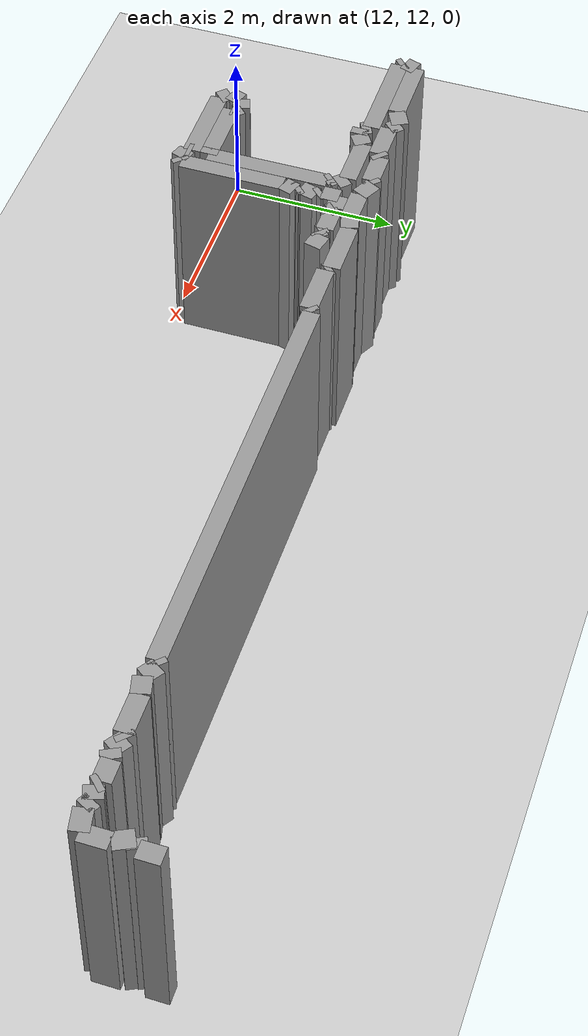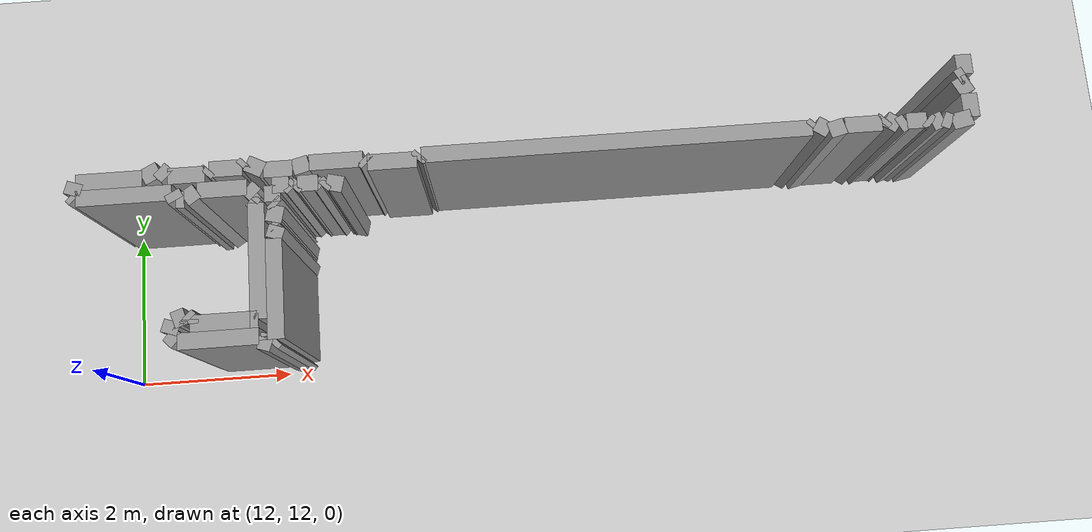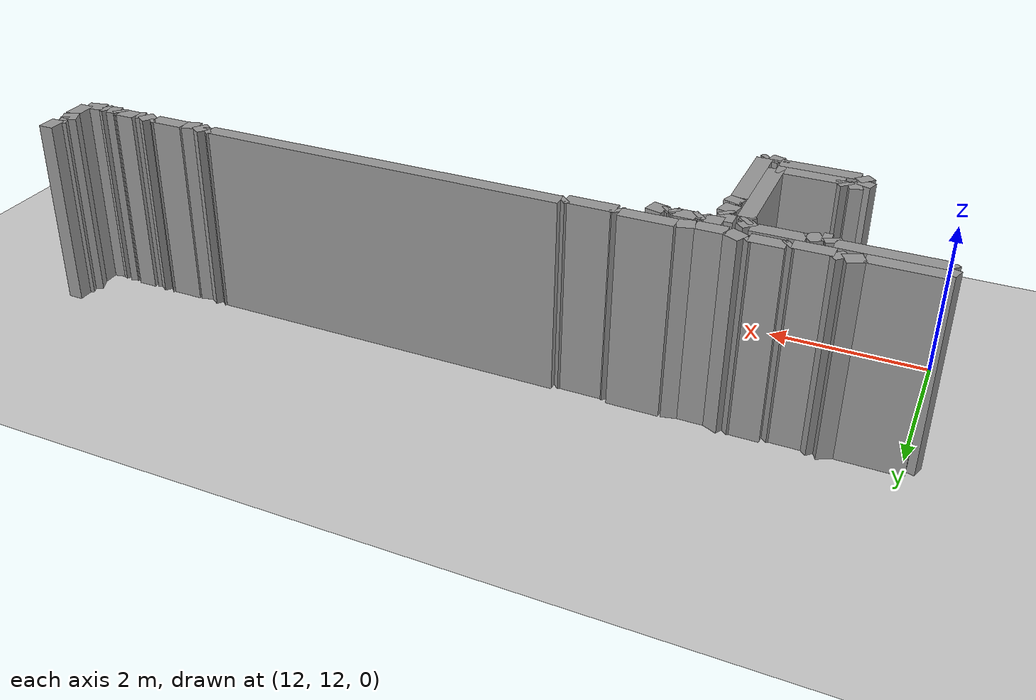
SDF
<sdf version="1.4">
 <world name="1_wall">
  <model name="ground_plane">
   <static>1</static>
   <link name="link">
    <collision name="collision">
     <geometry><plane><normal>0 0 1</normal><size>1000 1000</size></plane></geometry>
     <surface><friction><ode><mu>100</mu><mu2>50</mu2></ode></friction></surface>
    </collision>
    <visual name="visual">
     <cast_shadows>0</cast_shadows>
     <geometry><plane><normal>0 0 1</normal><size>10000 10000</size></plane></geometry>
     <material>
      <script><uri>file://media/materials/scripts/gazebo.material</uri><name>Gazebo/Grey</name></script>
     </material>
    </visual>
    <velocity_decay><linear>0</linear><angular>0</angular></velocity_decay>
   </link>
  </model>
  <model name="Wall_398">
   <static>1</static>
   <link name="Wall_398">
    <collision name="Wall_Collision_398">
     <geometry><box><size>0.25 0.2 2.5</size></box></geometry>
     <pose>0 0 1.25 0 -0 0</pose>
    </collision>
    <visual name="Wall_Visual_398">
     <pose>0 0 1.25 0 -0 0</pose>
     <geometry><box><size>0.25 0.2 2.5</size></box></geometry>
     <material>
      <script><uri>file://media/materials/scripts/gazebo.material</uri><name>Gazebo/Grey</name></script>
     </material>
    </visual>
    <velocity_decay><linear>0</linear><angular>0</angular></velocity_decay>
    <pose>22.8 14.925 0 0 0 -1.5707963267948966</pose>
   </link>
  </model>
  <model name="Wall_399">
   <static>1</static>
   <link name="Wall_399">
    <collision name="Wall_Collision_399">
     <geometry><box><size>0.1118033988749879 0.2 2.5</size></box></geometry>
     <pose>0 0 1.25 0 -0 0</pose>
    </collision>
    <visual name="Wall_Visual_399">
     <pose>0 0 1.25 0 -0 0</pose>
     <geometry><box><size>0.1118033988749879 0.2 2.5</size></box></geometry>
     <material>
      <script><uri>file://media/materials/scripts/gazebo.material</uri><name>Gazebo/Grey</name></script>
     </material>
    </visual>
    <velocity_decay><linear>0</linear><angular>0</angular></velocity_decay>
    <pose>22.75 14.775 0 0 0 -2.6779450445889728</pose>
   </link>
  </model>
  <model name="Wall_400">
   <static>1</static>
   <link name="Wall_400">
    <collision name="Wall_Collision_400">
     <geometry><box><size>0.22360679774997738 0.2 2.5</size></box></geometry>
     <pose>0 0 1.25 0 -0 0</pose>
    </collision>
    <visual name="Wall_Visual_400">
     <pose>0 0 1.25 0 -0 0</pose>
     <geometry><box><size>0.22360679774997738 0.2 2.5</size></box></geometry>
     <material>
      <script><uri>file://media/materials/scripts/gazebo.material</uri><name>Gazebo/Grey</name></script>
     </material>
    </visual>
    <velocity_decay><linear>0</linear><angular>0</angular></velocity_decay>
    <pose>22.75 14.65 0 0 0 -1.1071487177940975</pose>
   </link>
  </model>
  <model name="Wall_401">
   <static>1</static>
   <link name="Wall_401">
    <collision name="Wall_Collision_401">
     <geometry><box><size>0.3000000000000007 0.2 2.5</size></box></geometry>
     <pose>0 0 1.25 0 -0 0</pose>
    </collision>
    <visual name="Wall_Visual_401">
     <pose>0 0 1.25 0 -0 0</pose>
     <geometry><box><size>0.3000000000000007 0.2 2.5</size></box></geometry>
     <material>
      <script><uri>file://media/materials/scripts/gazebo.material</uri><name>Gazebo/Grey</name></script>
     </material>
    </visual>
    <velocity_decay><linear>0</linear><angular>0</angular></velocity_decay>
    <pose>22.8 14.4 0 0 0 -1.5707963267948966</pose>
   </link>
  </model>
  <model name="Wall_402">
   <static>1</static>
   <link name="Wall_402">
    <collision name="Wall_Collision_402">
     <geometry><box><size>0.25495097567963904 0.2 2.5</size></box></geometry>
     <pose>0 0 1.25 0 -0 0</pose>
    </collision>
    <visual name="Wall_Visual_402">
     <pose>0 0 1.25 0 -0 0</pose>
     <geometry><box><size>0.25495097567963904 0.2 2.5</size></box></geometry>
     <material>
      <script><uri>file://media/materials/scripts/gazebo.material</uri><name>Gazebo/Grey</name></script>
     </material>
    </visual>
    <velocity_decay><linear>0</linear><angular>0</angular></velocity_decay>
    <pose>22.675 14.225000000000001 0 0 0 -2.9441970937399167</pose>
   </link>
  </model>
  <model name="Wall_403">
   <static>1</static>
   <link name="Wall_403">
    <collision name="Wall_Collision_403">
     <geometry><box><size>0.1118033988749871 0.2 2.5</size></box></geometry>
     <pose>0 0 1.25 0 -0 0</pose>
    </collision>
    <visual name="Wall_Visual_403">
     <pose>0 0 1.25 0 -0 0</pose>
     <geometry><box><size>0.1118033988749871 0.2 2.5</size></box></geometry>
     <material>
      <script><uri>file://media/materials/scripts/gazebo.material</uri><name>Gazebo/Grey</name></script>
     </material>
    </visual>
    <velocity_decay><linear>0</linear><angular>0</angular></velocity_decay>
    <pose>22.5 14.225000000000001 0 0 0 2.677945044588987</pose>
   </link>
  </model>
  <model name="Wall_404">
   <static>1</static>
   <link name="Wall_404">
    <collision name="Wall_Collision_404">
     <geometry><box><size>0.15811388300842066 0.2 2.5</size></box></geometry>
     <pose>0 0 1.25 0 -0 0</pose>
    </collision>
    <visual name="Wall_Visual_404">
     <pose>0 0 1.25 0 -0 0</pose>
     <geometry><box><size>0.15811388300842066 0.2 2.5</size></box></geometry>
     <material>
      <script><uri>file://media/materials/scripts/gazebo.material</uri><name>Gazebo/Grey</name></script>
     </material>
    </visual>
    <velocity_decay><linear>0</linear><angular>0</angular></velocity_decay>
    <pose>22.375 14.225000000000001 0 0 0 -2.8198420991931616</pose>
   </link>
  </model>
  <model name="Wall_405">
   <static>1</static>
   <link name="Wall_405">
    <collision name="Wall_Collision_405">
     <geometry><box><size>0.0707106781186545 0.2 2.5</size></box></geometry>
     <pose>0 0 1.25 0 -0 0</pose>
    </collision>
    <visual name="Wall_Visual_405">
     <pose>0 0 1.25 0 -0 0</pose>
     <geometry><box><size>0.0707106781186545 0.2 2.5</size></box></geometry>
     <material>
      <script><uri>file://media/materials/scripts/gazebo.material</uri><name>Gazebo/Grey</name></script>
     </material>
    </visual>
    <velocity_decay><linear>0</linear><angular>0</angular></velocity_decay>
    <pose>22.275 14.225000000000001 0 0 0 2.3561944901923626</pose>
   </link>
  </model>
  <model name="Wall_406">
   <static>1</static>
   <link name="Wall_406">
    <collision name="Wall_Collision_406">
     <geometry><box><size>0.25 0.2 2.5</size></box></geometry>
     <pose>0 0 1.25 0 -0 0</pose>
    </collision>
    <visual name="Wall_Visual_406">
     <pose>0 0 1.25 0 -0 0</pose>
     <geometry><box><size>0.25 0.2 2.5</size></box></geometry>
     <material>
      <script><uri>file://media/materials/scripts/gazebo.material</uri><name>Gazebo/Grey</name></script>
     </material>
    </visual>
    <velocity_decay><linear>0</linear><angular>0</angular></velocity_decay>
    <pose>22.125 14.25 0 0 0 3.141592653589793</pose>
   </link>
  </model>
  <model name="Wall_407">
   <static>1</static>
   <link name="Wall_407">
    <collision name="Wall_Collision_407">
     <geometry><box><size>0.1118033988749871 0.2 2.5</size></box></geometry>
     <pose>0 0 1.25 0 -0 0</pose>
    </collision>
    <visual name="Wall_Visual_407">
     <pose>0 0 1.25 0 -0 0</pose>
     <geometry><box><size>0.1118033988749871 0.2 2.5</size></box></geometry>
     <material>
      <script><uri>file://media/materials/scripts/gazebo.material</uri><name>Gazebo/Grey</name></script>
     </material>
    </visual>
    <velocity_decay><linear>0</linear><angular>0</angular></velocity_decay>
    <pose>21.950000000000003 14.225000000000001 0 0 0 -2.677945044588987</pose>
   </link>
  </model>
  <model name="Wall_408">
   <static>1</static>
   <link name="Wall_408">
    <collision name="Wall_Collision_408">
     <geometry><box><size>0.18027756377320103 0.2 2.5</size></box></geometry>
     <pose>0 0 1.25 0 -0 0</pose>
    </collision>
    <visual name="Wall_Visual_408">
     <pose>0 0 1.25 0 -0 0</pose>
     <geometry><box><size>0.18027756377320103 0.2 2.5</size></box></geometry>
     <material>
      <script><uri>file://media/materials/scripts/gazebo.material</uri><name>Gazebo/Grey</name></script>
     </material>
    </visual>
    <velocity_decay><linear>0</linear><angular>0</angular></velocity_decay>
    <pose>21.825000000000003 14.25 0 0 0 2.5535900500422337</pose>
   </link>
  </model>
  <model name="Wall_409">
   <static>1</static>
   <link name="Wall_409">
    <collision name="Wall_Collision_409">
     <geometry><box><size>0.07071067811865325 0.2 2.5</size></box></geometry>
     <pose>0 0 1.25 0 -0 0</pose>
    </collision>
    <visual name="Wall_Visual_409">
     <pose>0 0 1.25 0 -0 0</pose>
     <geometry><box><size>0.07071067811865325 0.2 2.5</size></box></geometry>
     <material>
      <script><uri>file://media/materials/scripts/gazebo.material</uri><name>Gazebo/Grey</name></script>
     </material>
    </visual>
    <velocity_decay><linear>0</linear><angular>0</angular></velocity_decay>
    <pose>21.725 14.275 0 0 0 -2.3561944901923093</pose>
   </link>
  </model>
  <model name="Wall_410">
   <static>1</static>
   <link name="Wall_410">
    <collision name="Wall_Collision_410">
     <geometry><box><size>0.45000000000000284 0.2 2.5</size></box></geometry>
     <pose>0 0 1.25 0 -0 0</pose>
    </collision>
    <visual name="Wall_Visual_410">
     <pose>0 0 1.25 0 -0 0</pose>
     <geometry><box><size>0.45000000000000284 0.2 2.5</size></box></geometry>
     <material>
      <script><uri>file://media/materials/scripts/gazebo.material</uri><name>Gazebo/Grey</name></script>
     </material>
    </visual>
    <velocity_decay><linear>0</linear><angular>0</angular></velocity_decay>
    <pose>21.475 14.25 0 0 0 3.141592653589793</pose>
   </link>
  </model>
  <model name="Wall_411">
   <static>1</static>
   <link name="Wall_411">
    <collision name="Wall_Collision_411">
     <geometry><box><size>0.20615528128088206 0.2 2.5</size></box></geometry>
     <pose>0 0 1.25 0 -0 0</pose>
    </collision>
    <visual name="Wall_Visual_411">
     <pose>0 0 1.25 0 -0 0</pose>
     <geometry><box><size>0.20615528128088206 0.2 2.5</size></box></geometry>
     <material>
      <script><uri>file://media/materials/scripts/gazebo.material</uri><name>Gazebo/Grey</name></script>
     </material>
    </visual>
    <velocity_decay><linear>0</linear><angular>0</angular></velocity_decay>
    <pose>21.15 14.225000000000001 0 0 0 -2.8966139904629333</pose>
   </link>
  </model>
  <model name="Wall_412">
   <static>1</static>
   <link name="Wall_412">
    <collision name="Wall_Collision_412">
     <geometry><box><size>0.1802775637731981 0.2 2.5</size></box></geometry>
     <pose>0 0 1.25 0 -0 0</pose>
    </collision>
    <visual name="Wall_Visual_412">
     <pose>0 0 1.25 0 -0 0</pose>
     <geometry><box><size>0.1802775637731981 0.2 2.5</size></box></geometry>
     <material>
      <script><uri>file://media/materials/scripts/gazebo.material</uri><name>Gazebo/Grey</name></script>
     </material>
    </visual>
    <velocity_decay><linear>0</linear><angular>0</angular></velocity_decay>
    <pose>20.975 14.25 0 0 0 2.553590050042223</pose>
   </link>
  </model>
  <model name="Wall_413">
   <static>1</static>
   <link name="Wall_413">
    <collision name="Wall_Collision_413">
     <geometry><box><size>0.07071067811865576 0.2 2.5</size></box></geometry>
     <pose>0 0 1.25 0 -0 0</pose>
    </collision>
    <visual name="Wall_Visual_413">
     <pose>0 0 1.25 0 -0 0</pose>
     <geometry><box><size>0.07071067811865576 0.2 2.5</size></box></geometry>
     <material>
      <script><uri>file://media/materials/scripts/gazebo.material</uri><name>Gazebo/Grey</name></script>
     </material>
    </visual>
    <velocity_decay><linear>0</linear><angular>0</angular></velocity_decay>
    <pose>20.875 14.275 0 0 0 -2.356194490192345</pose>
   </link>
  </model>
  <model name="Wall_414">
   <static>1</static>
   <link name="Wall_414">
    <collision name="Wall_Collision_414">
     <geometry><box><size>4.75 0.2 2.5</size></box></geometry>
     <pose>0 0 1.25 0 -0 0</pose>
    </collision>
    <visual name="Wall_Visual_414">
     <pose>0 0 1.25 0 -0 0</pose>
     <geometry><box><size>4.75 0.2 2.5</size></box></geometry>
     <material>
      <script><uri>file://media/materials/scripts/gazebo.material</uri><name>Gazebo/Grey</name></script>
     </material>
    </visual>
    <velocity_decay><linear>0</linear><angular>0</angular></velocity_decay>
    <pose>18.475 14.25 0 0 0 3.141592653589793</pose>
   </link>
  </model>
  <model name="Wall_415">
   <static>1</static>
   <link name="Wall_415">
    <collision name="Wall_Collision_415">
     <geometry><box><size>0.0707106781186545 0.2 2.5</size></box></geometry>
     <pose>0 0 1.25 0 -0 0</pose>
    </collision>
    <visual name="Wall_Visual_415">
     <pose>0 0 1.25 0 -0 0</pose>
     <geometry><box><size>0.0707106781186545 0.2 2.5</size></box></geometry>
     <material>
      <script><uri>file://media/materials/scripts/gazebo.material</uri><name>Gazebo/Grey</name></script>
     </material>
    </visual>
    <velocity_decay><linear>0</linear><angular>0</angular></velocity_decay>
    <pose>16.075000000000003 14.225000000000001 0 0 0 -2.3561944901923626</pose>
   </link>
  </model>
  <model name="Wall_416">
   <static>1</static>
   <link name="Wall_416">
    <collision name="Wall_Collision_416">
     <geometry><box><size>0.5999999999999996 0.2 2.5</size></box></geometry>
     <pose>0 0 1.25 0 -0 0</pose>
    </collision>
    <visual name="Wall_Visual_416">
     <pose>0 0 1.25 0 -0 0</pose>
     <geometry><box><size>0.5999999999999996 0.2 2.5</size></box></geometry>
     <material>
      <script><uri>file://media/materials/scripts/gazebo.material</uri><name>Gazebo/Grey</name></script>
     </material>
    </visual>
    <velocity_decay><linear>0</linear><angular>0</angular></velocity_decay>
    <pose>15.75 14.200000000000001 0 0 0 3.141592653589793</pose>
   </link>
  </model>
  <model name="Wall_417">
   <static>1</static>
   <link name="Wall_417">
    <collision name="Wall_Collision_417">
     <geometry><box><size>0.0707106781186545 0.2 2.5</size></box></geometry>
     <pose>0 0 1.25 0 -0 0</pose>
    </collision>
    <visual name="Wall_Visual_417">
     <pose>0 0 1.25 0 -0 0</pose>
     <geometry><box><size>0.0707106781186545 0.2 2.5</size></box></geometry>
     <material>
      <script><uri>file://media/materials/scripts/gazebo.material</uri><name>Gazebo/Grey</name></script>
     </material>
    </visual>
    <velocity_decay><linear>0</linear><angular>0</angular></velocity_decay>
    <pose>15.425 14.225000000000001 0 0 0 2.3561944901923626</pose>
   </link>
  </model>
  <model name="Wall_418">
   <static>1</static>
   <link name="Wall_418">
    <collision name="Wall_Collision_418">
     <geometry><box><size>0.6500000000000004 0.2 2.5</size></box></geometry>
     <pose>0 0 1.25 0 -0 0</pose>
    </collision>
    <visual name="Wall_Visual_418">
     <pose>0 0 1.25 0 -0 0</pose>
     <geometry><box><size>0.6500000000000004 0.2 2.5</size></box></geometry>
     <material>
      <script><uri>file://media/materials/scripts/gazebo.material</uri><name>Gazebo/Grey</name></script>
     </material>
    </visual>
    <velocity_decay><linear>0</linear><angular>0</angular></velocity_decay>
    <pose>15.075 14.25 0 0 0 3.141592653589793</pose>
   </link>
  </model>
  <model name="Wall_419">
   <static>1</static>
   <link name="Wall_419">
    <collision name="Wall_Collision_419">
     <geometry><box><size>0.20615528128088206 0.2 2.5</size></box></geometry>
     <pose>0 0 1.25 0 -0 0</pose>
    </collision>
    <visual name="Wall_Visual_419">
     <pose>0 0 1.25 0 -0 0</pose>
     <geometry><box><size>0.20615528128088206 0.2 2.5</size></box></geometry>
     <material>
      <script><uri>file://media/materials/scripts/gazebo.material</uri><name>Gazebo/Grey</name></script>
     </material>
    </visual>
    <velocity_decay><linear>0</linear><angular>0</angular></velocity_decay>
    <pose>14.65 14.225000000000001 0 0 0 -2.8966139904629333</pose>
   </link>
  </model>
  <model name="Wall_420">
   <static>1</static>
   <link name="Wall_420">
    <collision name="Wall_Collision_420">
     <geometry><box><size>0.34999999999999964 0.2 2.5</size></box></geometry>
     <pose>0 0 1.25 0 -0 0</pose>
    </collision>
    <visual name="Wall_Visual_420">
     <pose>0 0 1.25 0 -0 0</pose>
     <geometry><box><size>0.34999999999999964 0.2 2.5</size></box></geometry>
     <material>
      <script><uri>file://media/materials/scripts/gazebo.material</uri><name>Gazebo/Grey</name></script>
     </material>
    </visual>
    <velocity_decay><linear>0</linear><angular>0</angular></velocity_decay>
    <pose>14.375 14.200000000000001 0 0 0 3.141592653589793</pose>
   </link>
  </model>
  <model name="Wall_421">
   <static>1</static>
   <link name="Wall_421">
    <collision name="Wall_Collision_421">
     <geometry><box><size>0.22360679774997974 0.2 2.5</size></box></geometry>
     <pose>0 0 1.25 0 -0 0</pose>
    </collision>
    <visual name="Wall_Visual_421">
     <pose>0 0 1.25 0 -0 0</pose>
     <geometry><box><size>0.22360679774997974 0.2 2.5</size></box></geometry>
     <material>
      <script><uri>file://media/materials/scripts/gazebo.material</uri><name>Gazebo/Grey</name></script>
     </material>
    </visual>
    <velocity_decay><linear>0</linear><angular>0</angular></velocity_decay>
    <pose>14.100000000000001 14.25 0 0 0 2.6779450445889905</pose>
   </link>
  </model>
  <model name="Wall_422">
   <static>1</static>
   <link name="Wall_422">
    <collision name="Wall_Collision_422">
     <geometry><box><size>0.0707106781186545 0.2 2.5</size></box></geometry>
     <pose>0 0 1.25 0 -0 0</pose>
    </collision>
    <visual name="Wall_Visual_422">
     <pose>0 0 1.25 0 -0 0</pose>
     <geometry><box><size>0.0707106781186545 0.2 2.5</size></box></geometry>
     <material>
      <script><uri>file://media/materials/scripts/gazebo.material</uri><name>Gazebo/Grey</name></script>
     </material>
    </visual>
    <velocity_decay><linear>0</linear><angular>0</angular></velocity_decay>
    <pose>13.975000000000001 14.275 0 0 0 -2.356194490192327</pose>
   </link>
  </model>
  <model name="Wall_423">
   <static>1</static>
   <link name="Wall_423">
    <collision name="Wall_Collision_423">
     <geometry><box><size>0.40000000000000036 0.2 2.5</size></box></geometry>
     <pose>0 0 1.25 0 -0 0</pose>
    </collision>
    <visual name="Wall_Visual_423">
     <pose>0 0 1.25 0 -0 0</pose>
     <geometry><box><size>0.40000000000000036 0.2 2.5</size></box></geometry>
     <material>
      <script><uri>file://media/materials/scripts/gazebo.material</uri><name>Gazebo/Grey</name></script>
     </material>
    </visual>
    <velocity_decay><linear>0</linear><angular>0</angular></velocity_decay>
    <pose>13.75 14.25 0 0 0 3.141592653589793</pose>
   </link>
  </model>
  <model name="Wall_424">
   <static>1</static>
   <link name="Wall_424">
    <collision name="Wall_Collision_424">
     <geometry><box><size>0.0707106781186545 0.2 2.5</size></box></geometry>
     <pose>0 0 1.25 0 -0 0</pose>
    </collision>
    <visual name="Wall_Visual_424">
     <pose>0 0 1.25 0 -0 0</pose>
     <geometry><box><size>0.0707106781186545 0.2 2.5</size></box></geometry>
     <material>
      <script><uri>file://media/materials/scripts/gazebo.material</uri><name>Gazebo/Grey</name></script>
     </material>
    </visual>
    <velocity_decay><linear>0</linear><angular>0</angular></velocity_decay>
    <pose>13.525 14.225000000000001 0 0 0 -2.3561944901923626</pose>
   </link>
  </model>
  <model name="Wall_425">
   <static>1</static>
   <link name="Wall_425">
    <collision name="Wall_Collision_425">
     <geometry><box><size>0.4499999999999993 0.2 2.5</size></box></geometry>
     <pose>0 0 1.25 0 -0 0</pose>
    </collision>
    <visual name="Wall_Visual_425">
     <pose>0 0 1.25 0 -0 0</pose>
     <geometry><box><size>0.4499999999999993 0.2 2.5</size></box></geometry>
     <material>
      <script><uri>file://media/materials/scripts/gazebo.material</uri><name>Gazebo/Grey</name></script>
     </material>
    </visual>
    <velocity_decay><linear>0</linear><angular>0</angular></velocity_decay>
    <pose>13.275 14.200000000000001 0 0 0 3.141592653589793</pose>
   </link>
  </model>
  <model name="Wall_426">
   <static>1</static>
   <link name="Wall_426">
    <collision name="Wall_Collision_426">
     <geometry><box><size>0.141421356237309 0.2 2.5</size></box></geometry>
     <pose>0 0 1.25 0 -0 0</pose>
    </collision>
    <visual name="Wall_Visual_426">
     <pose>0 0 1.25 0 -0 0</pose>
     <geometry><box><size>0.141421356237309 0.2 2.5</size></box></geometry>
     <material>
      <script><uri>file://media/materials/scripts/gazebo.material</uri><name>Gazebo/Grey</name></script>
     </material>
    </visual>
    <velocity_decay><linear>0</linear><angular>0</angular></velocity_decay>
    <pose>13.0 14.25 0 0 0 2.356194490192345</pose>
   </link>
  </model>
  <model name="Wall_427">
   <static>1</static>
   <link name="Wall_427">
    <collision name="Wall_Collision_427">
     <geometry><box><size>0.22360679774997974 0.2 2.5</size></box></geometry>
     <pose>0 0 1.25 0 -0 0</pose>
    </collision>
    <visual name="Wall_Visual_427">
     <pose>0 0 1.25 0 -0 0</pose>
     <geometry><box><size>0.22360679774997974 0.2 2.5</size></box></geometry>
     <material>
      <script><uri>file://media/materials/scripts/gazebo.material</uri><name>Gazebo/Grey</name></script>
     </material>
    </visual>
    <velocity_decay><linear>0</linear><angular>0</angular></velocity_decay>
    <pose>12.850000000000001 14.25 0 0 0 -2.6779450445889905</pose>
   </link>
  </model>
  <model name="Wall_428">
   <static>1</static>
   <link name="Wall_428">
    <collision name="Wall_Collision_428">
     <geometry><box><size>0.7999999999999989 0.2 2.5</size></box></geometry>
     <pose>0 0 1.25 0 -0 0</pose>
    </collision>
    <visual name="Wall_Visual_428">
     <pose>0 0 1.25 0 -0 0</pose>
     <geometry><box><size>0.7999999999999989 0.2 2.5</size></box></geometry>
     <material>
      <script><uri>file://media/materials/scripts/gazebo.material</uri><name>Gazebo/Grey</name></script>
     </material>
    </visual>
    <velocity_decay><linear>0</linear><angular>0</angular></velocity_decay>
    <pose>12.350000000000001 14.200000000000001 0 0 0 3.141592653589793</pose>
   </link>
  </model>
  <model name="Wall_429">
   <static>1</static>
   <link name="Wall_429">
    <collision name="Wall_Collision_429">
     <geometry><box><size>0.15811388300841953 0.2 2.5</size></box></geometry>
     <pose>0 0 1.25 0 -0 0</pose>
    </collision>
    <visual name="Wall_Visual_429">
     <pose>0 0 1.25 0 -0 0</pose>
     <geometry><box><size>0.15811388300841953 0.2 2.5</size></box></geometry>
     <material>
      <script><uri>file://media/materials/scripts/gazebo.material</uri><name>Gazebo/Grey</name></script>
     </material>
    </visual>
    <velocity_decay><linear>0</linear><angular>0</angular></velocity_decay>
    <pose>11.925 14.125 0 0 0 -1.8925468811915425</pose>
   </link>
  </model>
  <model name="Wall_430">
   <static>1</static>
   <link name="Wall_430">
    <collision name="Wall_Collision_430">
     <geometry><box><size>0.07071067811865576 0.2 2.5</size></box></geometry>
     <pose>0 0 1.25 0 -0 0</pose>
    </collision>
    <visual name="Wall_Visual_430">
     <pose>0 0 1.25 0 -0 0</pose>
     <geometry><box><size>0.07071067811865576 0.2 2.5</size></box></geometry>
     <material>
      <script><uri>file://media/materials/scripts/gazebo.material</uri><name>Gazebo/Grey</name></script>
     </material>
    </visual>
    <velocity_decay><linear>0</linear><angular>0</angular></velocity_decay>
    <pose>11.925 14.025 0 0 0 -0.7853981633974483</pose>
   </link>
  </model>
  <model name="Wall_431">
   <static>1</static>
   <link name="Wall_431">
    <collision name="Wall_Collision_431">
     <geometry><box><size>1.1500000000000004 0.2 2.5</size></box></geometry>
     <pose>0 0 1.25 0 -0 0</pose>
    </collision>
    <visual name="Wall_Visual_431">
     <pose>0 0 1.25 0 -0 0</pose>
     <geometry><box><size>1.1500000000000004 0.2 2.5</size></box></geometry>
     <material>
      <script><uri>file://media/materials/scripts/gazebo.material</uri><name>Gazebo/Grey</name></script>
     </material>
    </visual>
    <velocity_decay><linear>0</linear><angular>0</angular></velocity_decay>
    <pose>12.525000000000002 14.0 0 0 0 0.0</pose>
   </link>
  </model>
  <model name="Wall_432">
   <static>1</static>
   <link name="Wall_432">
    <collision name="Wall_Collision_432">
     <geometry><box><size>0.11180339887498869 0.2 2.5</size></box></geometry>
     <pose>0 0 1.25 0 -0 0</pose>
    </collision>
    <visual name="Wall_Visual_432">
     <pose>0 0 1.25 0 -0 0</pose>
     <geometry><box><size>0.11180339887498869 0.2 2.5</size></box></geometry>
     <material>
      <script><uri>file://media/materials/scripts/gazebo.material</uri><name>Gazebo/Grey</name></script>
     </material>
    </visual>
    <velocity_decay><linear>0</linear><angular>0</angular></velocity_decay>
    <pose>13.125 13.95 0 0 0 -1.1071487177940975</pose>
   </link>
  </model>
  <model name="Wall_433">
   <static>1</static>
   <link name="Wall_433">
    <collision name="Wall_Collision_433">
     <geometry><box><size>0.09999999999999964 0.2 2.5</size></box></geometry>
     <pose>0 0 1.25 0 -0 0</pose>
    </collision>
    <visual name="Wall_Visual_433">
     <pose>0 0 1.25 0 -0 0</pose>
     <geometry><box><size>0.09999999999999964 0.2 2.5</size></box></geometry>
     <material>
      <script><uri>file://media/materials/scripts/gazebo.material</uri><name>Gazebo/Grey</name></script>
     </material>
    </visual>
    <velocity_decay><linear>0</linear><angular>0</angular></velocity_decay>
    <pose>13.2 13.9 0 0 0 0.0</pose>
   </link>
  </model>
  <model name="Wall_434">
   <static>1</static>
   <link name="Wall_434">
    <collision name="Wall_Collision_434">
     <geometry><box><size>0.18027756377319956 0.2 2.5</size></box></geometry>
     <pose>0 0 1.25 0 -0 0</pose>
    </collision>
    <visual name="Wall_Visual_434">
     <pose>0 0 1.25 0 -0 0</pose>
     <geometry><box><size>0.18027756377319956 0.2 2.5</size></box></geometry>
     <material>
      <script><uri>file://media/materials/scripts/gazebo.material</uri><name>Gazebo/Grey</name></script>
     </material>
    </visual>
    <velocity_decay><linear>0</linear><angular>0</angular></velocity_decay>
    <pose>13.325 13.95 0 0 0 0.5880026035475648</pose>
   </link>
  </model>
  <model name="Wall_435">
   <static>1</static>
   <link name="Wall_435">
    <collision name="Wall_Collision_435">
     <geometry><box><size>0.5999999999999996 0.2 2.5</size></box></geometry>
     <pose>0 0 1.25 0 -0 0</pose>
    </collision>
    <visual name="Wall_Visual_435">
     <pose>0 0 1.25 0 -0 0</pose>
     <geometry><box><size>0.5999999999999996 0.2 2.5</size></box></geometry>
     <material>
      <script><uri>file://media/materials/scripts/gazebo.material</uri><name>Gazebo/Grey</name></script>
     </material>
    </visual>
    <velocity_decay><linear>0</linear><angular>0</angular></velocity_decay>
    <pose>13.7 14.0 0 0 0 0.0</pose>
   </link>
  </model>
  <model name="Wall_436">
   <static>1</static>
   <link name="Wall_436">
    <collision name="Wall_Collision_436">
     <geometry><box><size>0.14142135623731025 0.2 2.5</size></box></geometry>
     <pose>0 0 1.25 0 -0 0</pose>
    </collision>
    <visual name="Wall_Visual_436">
     <pose>0 0 1.25 0 -0 0</pose>
     <geometry><box><size>0.14142135623731025 0.2 2.5</size></box></geometry>
     <material>
      <script><uri>file://media/materials/scripts/gazebo.material</uri><name>Gazebo/Grey</name></script>
     </material>
    </visual>
    <velocity_decay><linear>0</linear><angular>0</angular></velocity_decay>
    <pose>14.05 13.95 0 0 0 -0.7853981633974394</pose>
   </link>
  </model>
  <model name="Wall_437">
   <static>1</static>
   <link name="Wall_437">
    <collision name="Wall_Collision_437">
     <geometry><box><size>0.0707106781186545 0.2 2.5</size></box></geometry>
     <pose>0 0 1.25 0 -0 0</pose>
    </collision>
    <visual name="Wall_Visual_437">
     <pose>0 0 1.25 0 -0 0</pose>
     <geometry><box><size>0.0707106781186545 0.2 2.5</size></box></geometry>
     <material>
      <script><uri>file://media/materials/scripts/gazebo.material</uri><name>Gazebo/Grey</name></script>
     </material>
    </visual>
    <velocity_decay><linear>0</linear><angular>0</angular></velocity_decay>
    <pose>14.075000000000001 13.875 0 0 0 -2.3561944901923626</pose>
   </link>
  </model>
  <model name="Wall_438">
   <static>1</static>
   <link name="Wall_438">
    <collision name="Wall_Collision_438">
     <geometry><box><size>0.07071067811865576 0.2 2.5</size></box></geometry>
     <pose>0 0 1.25 0 -0 0</pose>
    </collision>
    <visual name="Wall_Visual_438">
     <pose>0 0 1.25 0 -0 0</pose>
     <geometry><box><size>0.07071067811865576 0.2 2.5</size></box></geometry>
     <material>
      <script><uri>file://media/materials/scripts/gazebo.material</uri><name>Gazebo/Grey</name></script>
     </material>
    </visual>
    <velocity_decay><linear>0</linear><angular>0</angular></velocity_decay>
    <pose>14.075000000000001 13.825000000000001 0 0 0 -0.7853981633974483</pose>
   </link>
  </model>
  <model name="Wall_439">
   <static>1</static>
   <link name="Wall_439">
    <collision name="Wall_Collision_439">
     <geometry><box><size>1.4000000000000004 0.2 2.5</size></box></geometry>
     <pose>0 0 1.25 0 -0 0</pose>
    </collision>
    <visual name="Wall_Visual_439">
     <pose>0 0 1.25 0 -0 0</pose>
     <geometry><box><size>1.4000000000000004 0.2 2.5</size></box></geometry>
     <material>
      <script><uri>file://media/materials/scripts/gazebo.material</uri><name>Gazebo/Grey</name></script>
     </material>
    </visual>
    <velocity_decay><linear>0</linear><angular>0</angular></velocity_decay>
    <pose>14.100000000000001 13.100000000000001 0 0 0 -1.5707963267948966</pose>
   </link>
  </model>
  <model name="Wall_440">
   <static>1</static>
   <link name="Wall_440">
    <collision name="Wall_Collision_440">
     <geometry><box><size>0.10000000000000142 0.2 2.5</size></box></geometry>
     <pose>0 0 1.25 0 -0 0</pose>
    </collision>
    <visual name="Wall_Visual_440">
     <pose>0 0 1.25 0 -0 0</pose>
     <geometry><box><size>0.10000000000000142 0.2 2.5</size></box></geometry>
     <material>
      <script><uri>file://media/materials/scripts/gazebo.material</uri><name>Gazebo/Grey</name></script>
     </material>
    </visual>
    <velocity_decay><linear>0</linear><angular>0</angular></velocity_decay>
    <pose>14.05 12.4 0 0 0 3.141592653589793</pose>
   </link>
  </model>
  <model name="Wall_441">
   <static>1</static>
   <link name="Wall_441">
    <collision name="Wall_Collision_441">
     <geometry><box><size>0.6999999999999993 0.2 2.5</size></box></geometry>
     <pose>0 0 1.25 0 -0 0</pose>
    </collision>
    <visual name="Wall_Visual_441">
     <pose>0 0 1.25 0 -0 0</pose>
     <geometry><box><size>0.6999999999999993 0.2 2.5</size></box></geometry>
     <material>
      <script><uri>file://media/materials/scripts/gazebo.material</uri><name>Gazebo/Grey</name></script>
     </material>
    </visual>
    <velocity_decay><linear>0</linear><angular>0</angular></velocity_decay>
    <pose>13.65 12.4 0 0 0 3.141592653589793</pose>
   </link>
  </model>
  <model name="Wall_442">
   <static>1</static>
   <link name="Wall_442">
    <collision name="Wall_Collision_442">
     <geometry><box><size>0.05000000000000071 0.2 2.5</size></box></geometry>
     <pose>0 0 1.25 0 -0 0</pose>
    </collision>
    <visual name="Wall_Visual_442">
     <pose>0 0 1.25 0 -0 0</pose>
     <geometry><box><size>0.05000000000000071 0.2 2.5</size></box></geometry>
     <material>
      <script><uri>file://media/materials/scripts/gazebo.material</uri><name>Gazebo/Grey</name></script>
     </material>
    </visual>
    <velocity_decay><linear>0</linear><angular>0</angular></velocity_decay>
    <pose>13.3 12.425 0 0 0 1.5707963267948966</pose>
   </link>
  </model>
  <model name="Wall_443">
   <static>1</static>
   <link name="Wall_443">
    <collision name="Wall_Collision_443">
     <geometry><box><size>0.0707106781186545 0.2 2.5</size></box></geometry>
     <pose>0 0 1.25 0 -0 0</pose>
    </collision>
    <visual name="Wall_Visual_443">
     <pose>0 0 1.25 0 -0 0</pose>
     <geometry><box><size>0.0707106781186545 0.2 2.5</size></box></geometry>
     <material>
      <script><uri>file://media/materials/scripts/gazebo.material</uri><name>Gazebo/Grey</name></script>
     </material>
    </visual>
    <velocity_decay><linear>0</linear><angular>0</angular></velocity_decay>
    <pose>13.275 12.475000000000001 0 0 0 2.3561944901923626</pose>
   </link>
  </model>
  <model name="Wall_444">
   <static>1</static>
   <link name="Wall_444">
    <collision name="Wall_Collision_444">
     <geometry><box><size>0.15811388300841728 0.2 2.5</size></box></geometry>
     <pose>0 0 1.25 0 -0 0</pose>
    </collision>
    <visual name="Wall_Visual_444">
     <pose>0 0 1.25 0 -0 0</pose>
     <geometry><box><size>0.15811388300841728 0.2 2.5</size></box></geometry>
     <material>
      <script><uri>file://media/materials/scripts/gazebo.material</uri><name>Gazebo/Grey</name></script>
     </material>
    </visual>
    <velocity_decay><linear>0</linear><angular>0</angular></velocity_decay>
    <pose>13.175 12.475000000000001 0 0 0 -2.8198420991931545</pose>
   </link>
  </model>
  <model name="Wall_445">
   <static>1</static>
   <link name="Wall_445">
    <collision name="Wall_Collision_445">
     <geometry><box><size>0.15811388300841953 0.2 2.5</size></box></geometry>
     <pose>0 0 1.25 0 -0 0</pose>
    </collision>
    <visual name="Wall_Visual_445">
     <pose>0 0 1.25 0 -0 0</pose>
     <geometry><box><size>0.15811388300841953 0.2 2.5</size></box></geometry>
     <material>
      <script><uri>file://media/materials/scripts/gazebo.material</uri><name>Gazebo/Grey</name></script>
     </material>
    </visual>
    <velocity_decay><linear>0</linear><angular>0</angular></velocity_decay>
    <pose>13.075000000000001 12.375 0 0 0 -1.8925468811915425</pose>
   </link>
  </model>
  <model name="Wall_446">
   <static>1</static>
   <link name="Wall_446">
    <collision name="Wall_Collision_446">
     <geometry><box><size>0.141421356237309 0.2 2.5</size></box></geometry>
     <pose>0 0 1.25 0 -0 0</pose>
    </collision>
    <visual name="Wall_Visual_446">
     <pose>0 0 1.25 0 -0 0</pose>
     <geometry><box><size>0.141421356237309 0.2 2.5</size></box></geometry>
     <material>
      <script><uri>file://media/materials/scripts/gazebo.material</uri><name>Gazebo/Grey</name></script>
     </material>
    </visual>
    <velocity_decay><linear>0</linear><angular>0</angular></velocity_decay>
    <pose>13.100000000000001 12.25 0 0 0 -0.7853981633974483</pose>
   </link>
  </model>
  <model name="Wall_447">
   <static>1</static>
   <link name="Wall_447">
    <collision name="Wall_Collision_447">
     <geometry><box><size>0.9500000000000011 0.2 2.5</size></box></geometry>
     <pose>0 0 1.25 0 -0 0</pose>
    </collision>
    <visual name="Wall_Visual_447">
     <pose>0 0 1.25 0 -0 0</pose>
     <geometry><box><size>0.9500000000000011 0.2 2.5</size></box></geometry>
     <material>
      <script><uri>file://media/materials/scripts/gazebo.material</uri><name>Gazebo/Grey</name></script>
     </material>
    </visual>
    <velocity_decay><linear>0</linear><angular>0</angular></velocity_decay>
    <pose>13.625 12.200000000000001 0 0 0 0.0</pose>
   </link>
  </model>
  <model name="Wall_448">
   <static>1</static>
   <link name="Wall_448">
    <collision name="Wall_Collision_448">
     <geometry><box><size>0.05000000000000071 0.2 2.5</size></box></geometry>
     <pose>0 0 1.25 0 -0 0</pose>
    </collision>
    <visual name="Wall_Visual_448">
     <pose>0 0 1.25 0 -0 0</pose>
     <geometry><box><size>0.05000000000000071 0.2 2.5</size></box></geometry>
     <material>
      <script><uri>file://media/materials/scripts/gazebo.material</uri><name>Gazebo/Grey</name></script>
     </material>
    </visual>
    <velocity_decay><linear>0</linear><angular>0</angular></velocity_decay>
    <pose>14.100000000000001 12.175 0 0 0 -1.5707963267948966</pose>
   </link>
  </model>
  <model name="Wall_449">
   <static>1</static>
   <link name="Wall_449">
    <collision name="Wall_Collision_449">
     <geometry><box><size>0.15811388300841728 0.2 2.5</size></box></geometry>
     <pose>0 0 1.25 0 -0 0</pose>
    </collision>
    <visual name="Wall_Visual_449">
     <pose>0 0 1.25 0 -0 0</pose>
     <geometry><box><size>0.15811388300841728 0.2 2.5</size></box></geometry>
     <material>
      <script><uri>file://media/materials/scripts/gazebo.material</uri><name>Gazebo/Grey</name></script>
     </material>
    </visual>
    <velocity_decay><linear>0</linear><angular>0</angular></velocity_decay>
    <pose>14.175 12.125 0 0 0 -0.32175055439663863</pose>
   </link>
  </model>
  <model name="Wall_450">
   <static>1</static>
   <link name="Wall_450">
    <collision name="Wall_Collision_450">
     <geometry><box><size>0.0707106781186545 0.2 2.5</size></box></geometry>
     <pose>0 0 1.25 0 -0 0</pose>
    </collision>
    <visual name="Wall_Visual_450">
     <pose>0 0 1.25 0 -0 0</pose>
     <geometry><box><size>0.0707106781186545 0.2 2.5</size></box></geometry>
     <material>
      <script><uri>file://media/materials/scripts/gazebo.material</uri><name>Gazebo/Grey</name></script>
     </material>
    </visual>
    <velocity_decay><linear>0</linear><angular>0</angular></velocity_decay>
    <pose>14.275 12.125 0 0 0 0.7853981633974305</pose>
   </link>
  </model>
  <model name="Wall_451">
   <static>1</static>
   <link name="Wall_451">
    <collision name="Wall_Collision_451">
     <geometry><box><size>1.200000000000001 0.2 2.5</size></box></geometry>
     <pose>0 0 1.25 0 -0 0</pose>
    </collision>
    <visual name="Wall_Visual_451">
     <pose>0 0 1.25 0 -0 0</pose>
     <geometry><box><size>1.200000000000001 0.2 2.5</size></box></geometry>
     <material>
      <script><uri>file://media/materials/scripts/gazebo.material</uri><name>Gazebo/Grey</name></script>
     </material>
    </visual>
    <velocity_decay><linear>0</linear><angular>0</angular></velocity_decay>
    <pose>14.3 12.75 0 0 0 1.5707963267948966</pose>
   </link>
  </model>
  <model name="Wall_452">
   <static>1</static>
   <link name="Wall_452">
    <collision name="Wall_Collision_452">
     <geometry><box><size>0.15811388300841783 0.2 2.5</size></box></geometry>
     <pose>0 0 1.25 0 -0 0</pose>
    </collision>
    <visual name="Wall_Visual_452">
     <pose>0 0 1.25 0 -0 0</pose>
     <geometry><box><size>0.15811388300841783 0.2 2.5</size></box></geometry>
     <material>
      <script><uri>file://media/materials/scripts/gazebo.material</uri><name>Gazebo/Grey</name></script>
     </material>
    </visual>
    <velocity_decay><linear>0</linear><angular>0</angular></velocity_decay>
    <pose>14.325000000000001 13.425 0 0 0 1.2490457723982473</pose>
   </link>
  </model>
  <model name="Wall_453">
   <static>1</static>
   <link name="Wall_453">
    <collision name="Wall_Collision_453">
     <geometry><box><size>0.07071067811865576 0.2 2.5</size></box></geometry>
     <pose>0 0 1.25 0 -0 0</pose>
    </collision>
    <visual name="Wall_Visual_453">
     <pose>0 0 1.25 0 -0 0</pose>
     <geometry><box><size>0.07071067811865576 0.2 2.5</size></box></geometry>
     <material>
      <script><uri>file://media/materials/scripts/gazebo.material</uri><name>Gazebo/Grey</name></script>
     </material>
    </visual>
    <velocity_decay><linear>0</linear><angular>0</angular></velocity_decay>
    <pose>14.325000000000001 13.525 0 0 0 2.356194490192345</pose>
   </link>
  </model>
  <model name="Wall_454">
   <static>1</static>
   <link name="Wall_454">
    <collision name="Wall_Collision_454">
     <geometry><box><size>0.2061552812808825 0.2 2.5</size></box></geometry>
     <pose>0 0 1.25 0 -0 0</pose>
    </collision>
    <visual name="Wall_Visual_454">
     <pose>0 0 1.25 0 -0 0</pose>
     <geometry><box><size>0.2061552812808825 0.2 2.5</size></box></geometry>
     <material>
      <script><uri>file://media/materials/scripts/gazebo.material</uri><name>Gazebo/Grey</name></script>
     </material>
    </visual>
    <velocity_decay><linear>0</linear><angular>0</angular></velocity_decay>
    <pose>14.325000000000001 13.65 0 0 0 1.3258176636680283</pose>
   </link>
  </model>
  <model name="Wall_455">
   <static>1</static>
   <link name="Wall_455">
    <collision name="Wall_Collision_455">
     <geometry><box><size>0.07071067811865576 0.2 2.5</size></box></geometry>
     <pose>0 0 1.25 0 -0 0</pose>
    </collision>
    <visual name="Wall_Visual_455">
     <pose>0 0 1.25 0 -0 0</pose>
     <geometry><box><size>0.07071067811865576 0.2 2.5</size></box></geometry>
     <material>
      <script><uri>file://media/materials/scripts/gazebo.material</uri><name>Gazebo/Grey</name></script>
     </material>
    </visual>
    <velocity_decay><linear>0</linear><angular>0</angular></velocity_decay>
    <pose>14.325000000000001 13.775 0 0 0 2.356194490192345</pose>
   </link>
  </model>
  <model name="Wall_456">
   <static>1</static>
   <link name="Wall_456">
    <collision name="Wall_Collision_456">
     <geometry><box><size>0.1999999999999993 0.2 2.5</size></box></geometry>
     <pose>0 0 1.25 0 -0 0</pose>
    </collision>
    <visual name="Wall_Visual_456">
     <pose>0 0 1.25 0 -0 0</pose>
     <geometry><box><size>0.1999999999999993 0.2 2.5</size></box></geometry>
     <material>
      <script><uri>file://media/materials/scripts/gazebo.material</uri><name>Gazebo/Grey</name></script>
     </material>
    </visual>
    <velocity_decay><linear>0</linear><angular>0</angular></velocity_decay>
    <pose>14.3 13.9 0 0 0 1.5707963267948966</pose>
   </link>
  </model>
  <model name="Wall_457">
   <static>1</static>
   <link name="Wall_457">
    <collision name="Wall_Collision_457">
     <geometry><box><size>0.1999999999999993 0.2 2.5</size></box></geometry>
     <pose>0 0 1.25 0 -0 0</pose>
    </collision>
    <visual name="Wall_Visual_457">
     <pose>0 0 1.25 0 -0 0</pose>
     <geometry><box><size>0.1999999999999993 0.2 2.5</size></box></geometry>
     <material>
      <script><uri>file://media/materials/scripts/gazebo.material</uri><name>Gazebo/Grey</name></script>
     </material>
    </visual>
    <velocity_decay><linear>0</linear><angular>0</angular></velocity_decay>
    <pose>14.4 14.0 0 0 0 0.0</pose>
   </link>
  </model>
  <model name="Wall_458">
   <static>1</static>
   <link name="Wall_458">
    <collision name="Wall_Collision_458">
     <geometry><box><size>0.0707106781186545 0.2 2.5</size></box></geometry>
     <pose>0 0 1.25 0 -0 0</pose>
    </collision>
    <visual name="Wall_Visual_458">
     <pose>0 0 1.25 0 -0 0</pose>
     <geometry><box><size>0.0707106781186545 0.2 2.5</size></box></geometry>
     <material>
      <script><uri>file://media/materials/scripts/gazebo.material</uri><name>Gazebo/Grey</name></script>
     </material>
    </visual>
    <velocity_decay><linear>0</linear><angular>0</angular></velocity_decay>
    <pose>14.525 13.975000000000001 0 0 0 -0.7853981633974305</pose>
   </link>
  </model>
  <model name="Wall_459">
   <static>1</static>
   <link name="Wall_459">
    <collision name="Wall_Collision_459">
     <geometry><box><size>0.0707106781186545 0.2 2.5</size></box></geometry>
     <pose>0 0 1.25 0 -0 0</pose>
    </collision>
    <visual name="Wall_Visual_459">
     <pose>0 0 1.25 0 -0 0</pose>
     <geometry><box><size>0.0707106781186545 0.2 2.5</size></box></geometry>
     <material>
      <script><uri>file://media/materials/scripts/gazebo.material</uri><name>Gazebo/Grey</name></script>
     </material>
    </visual>
    <velocity_decay><linear>0</linear><angular>0</angular></velocity_decay>
    <pose>14.575000000000001 13.975000000000001 0 0 0 0.7853981633974305</pose>
   </link>
  </model>
  <model name="Wall_460">
   <static>1</static>
   <link name="Wall_460">
    <collision name="Wall_Collision_460">
     <geometry><box><size>0.25 0.2 2.5</size></box></geometry>
     <pose>0 0 1.25 0 -0 0</pose>
    </collision>
    <visual name="Wall_Visual_460">
     <pose>0 0 1.25 0 -0 0</pose>
     <geometry><box><size>0.25 0.2 2.5</size></box></geometry>
     <material>
      <script><uri>file://media/materials/scripts/gazebo.material</uri><name>Gazebo/Grey</name></script>
     </material>
    </visual>
    <velocity_decay><linear>0</linear><angular>0</angular></velocity_decay>
    <pose>14.725000000000001 14.0 0 0 0 0.0</pose>
   </link>
  </model>
  <model name="Wall_461">
   <static>1</static>
   <link name="Wall_461">
    <collision name="Wall_Collision_461">
     <geometry><box><size>0.07071067811865324 0.2 2.5</size></box></geometry>
     <pose>0 0 1.25 0 -0 0</pose>
    </collision>
    <visual name="Wall_Visual_461">
     <pose>0 0 1.25 0 -0 0</pose>
     <geometry><box><size>0.07071067811865324 0.2 2.5</size></box></geometry>
     <material>
      <script><uri>file://media/materials/scripts/gazebo.material</uri><name>Gazebo/Grey</name></script>
     </material>
    </visual>
    <velocity_decay><linear>0</linear><angular>0</angular></velocity_decay>
    <pose>14.875 13.975000000000001 0 0 0 -0.7853981633974483</pose>
   </link>
  </model>
  <model name="Wall_462">
   <static>1</static>
   <link name="Wall_462">
    <collision name="Wall_Collision_462">
     <geometry><box><size>0.0707106781186545 0.2 2.5</size></box></geometry>
     <pose>0 0 1.25 0 -0 0</pose>
    </collision>
    <visual name="Wall_Visual_462">
     <pose>0 0 1.25 0 -0 0</pose>
     <geometry><box><size>0.0707106781186545 0.2 2.5</size></box></geometry>
     <material>
      <script><uri>file://media/materials/scripts/gazebo.material</uri><name>Gazebo/Grey</name></script>
     </material>
    </visual>
    <velocity_decay><linear>0</linear><angular>0</angular></velocity_decay>
    <pose>14.925 13.975000000000001 0 0 0 0.7853981633974305</pose>
   </link>
  </model>
  <model name="Wall_463">
   <static>1</static>
   <link name="Wall_463">
    <collision name="Wall_Collision_463">
     <geometry><box><size>0.20615528128088206 0.2 2.5</size></box></geometry>
     <pose>0 0 1.25 0 -0 0</pose>
    </collision>
    <visual name="Wall_Visual_463">
     <pose>0 0 1.25 0 -0 0</pose>
     <geometry><box><size>0.20615528128088206 0.2 2.5</size></box></geometry>
     <material>
      <script><uri>file://media/materials/scripts/gazebo.material</uri><name>Gazebo/Grey</name></script>
     </material>
    </visual>
    <velocity_decay><linear>0</linear><angular>0</angular></velocity_decay>
    <pose>15.05 13.975000000000001 0 0 0 -0.24497866312685998</pose>
   </link>
  </model>
 </world>
</sdf>
